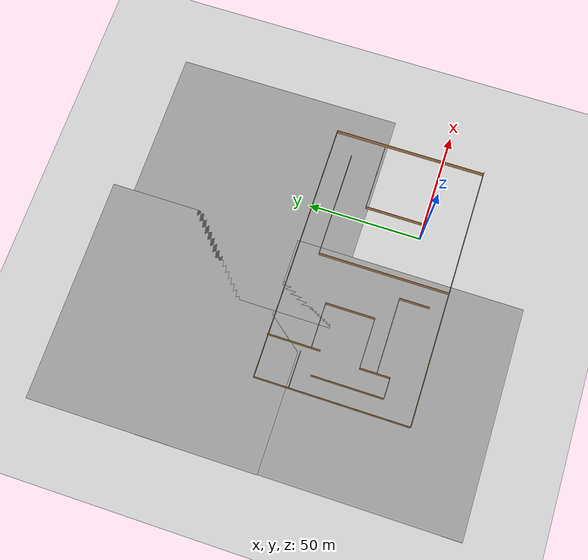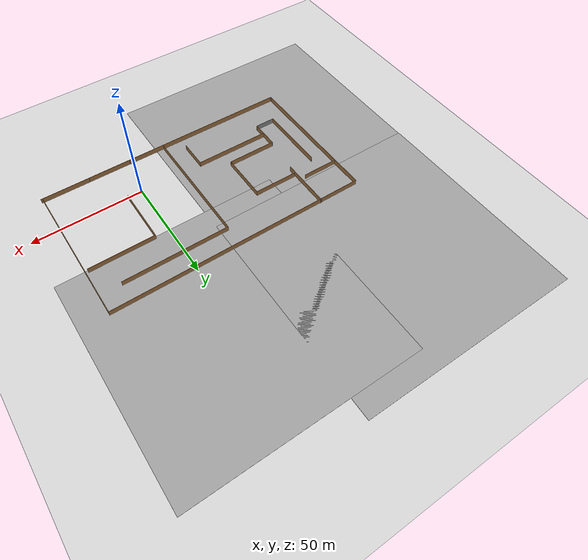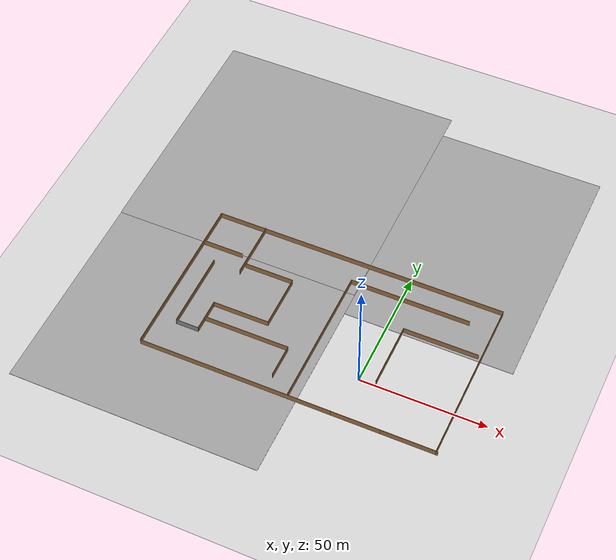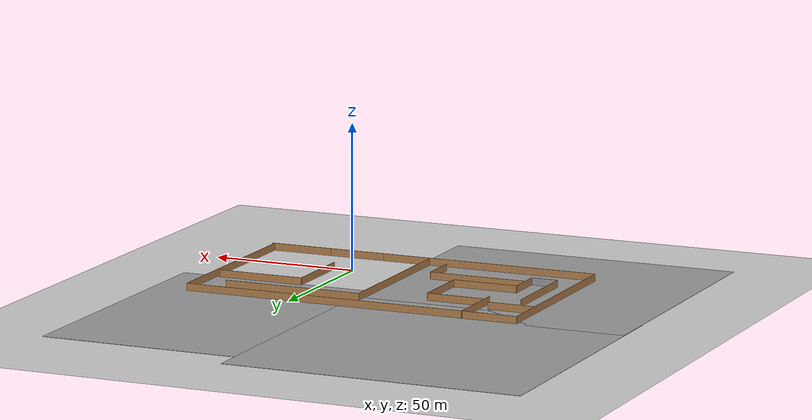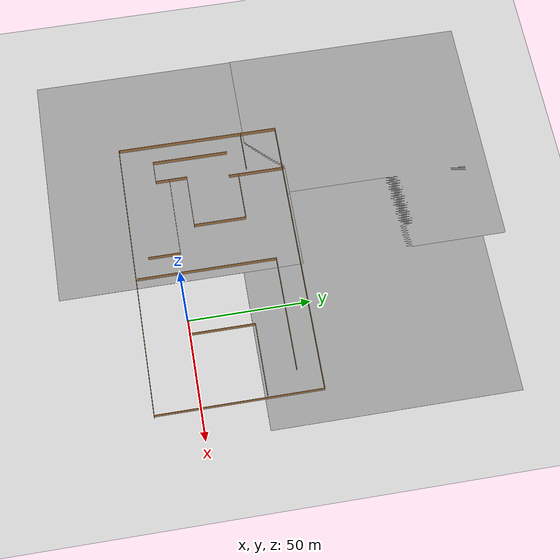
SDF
<sdf version="1.7">
 <world name="default">
  <light name="sun" type="directional">
   <pose>0 0 10 0 -0 0</pose>
   <diffuse>0.8 0.8 0.8 1</diffuse>
   <specular>0.2 0.2 0.2 1</specular>
   <attenuation>
    <range>1000</range>
    <constant>0.9</constant>
    <linear>0.01</linear>
    <quadratic>0.001</quadratic>
   </attenuation>
   <direction>-0.5 0.1 -0.9</direction>
   <spot><inner_angle>0</inner_angle><outer_angle>0</outer_angle><falloff>0</falloff></spot>
  </light>
  <model name="ground_plane">
   <static>1</static>
   <link name="link">
    <collision name="collision">
     <geometry><plane><normal>0 0 1</normal><size>100 100</size></plane></geometry>
     <surface>
      <contact><collide_bitmask>65535</collide_bitmask></contact>
      <friction><ode><mu>100</mu><mu2>50</mu2></ode></friction>
     </surface>
    </collision>
    <visual name="visual">
     <cast_shadows>0</cast_shadows>
     <geometry><plane><normal>0 0 1</normal><size>100 100</size></plane></geometry>
     <material>
      <script><uri>file://media/materials/scripts/gazebo.material</uri><name>Gazebo/Grey</name></script>
     </material>
    </visual>
   </link>
  </model>
  <gravity>0 0 -9.8</gravity>
  <magnetic_field>6e-06 2.3e-05 -4.2e-05</magnetic_field>
  <atmosphere type="adiabatic"/>
  <physics type="ode">
   <max_step_size>0.001</max_step_size>
   <real_time_factor>1</real_time_factor>
   <real_time_update_rate>1000</real_time_update_rate>
  </physics>
  <scene><ambient>0.4 0.4 0.4 1</ambient><background>0.7 0.7 0.7 1</background><shadows>1</shadows></scene>
  <spherical_coordinates>
   <surface_model>EARTH_WGS84</surface_model>
   <latitude_deg>0</latitude_deg>
   <longitude_deg>0</longitude_deg>
   <elevation>0</elevation>
   <heading_deg>0</heading_deg>
  </spherical_coordinates>
  <model name="testword">
   <pose>-20.9243 15.4808 0 0 -0 0</pose>
   <link name="Wall_0">
    <collision name="Wall_0_Collision">
     <geometry><box><size>19.5 0.15 2.5</size></box></geometry>
     <pose>0 0 1.25 0 -0 0</pose>
    </collision>
    <visual name="Wall_0_Visual">
     <pose>0 0 1.25 0 -0 0</pose>
     <geometry><box><size>19.5 0.15 2.5</size></box></geometry>
     <material>
      <script><uri>file://media/materials/scripts/gazebo.material</uri><name>Gazebo/Wood</name></script>
      <ambient>1 1 1 1</ambient>
     </material>
     <meta><layer>0</layer></meta>
    </visual>
    <pose>27.3893 -33.7108 0 0 -0 0</pose>
   </link>
   <link name="Wall_1">
    <collision name="Wall_1_Collision">
     <geometry><box><size>0.15 0.15 2.5</size></box></geometry>
     <pose>0 0 1.25 0 -0 0</pose>
    </collision>
    <visual name="Wall_1_Visual">
     <pose>0 0 1.25 0 -0 0</pose>
     <geometry><box><size>0.15 0.15 2.5</size></box></geometry>
     <material>
      <script><uri>file://media/materials/scripts/gazebo.material</uri><name>Gazebo/Grey</name></script>
      <ambient>1 1 1 1</ambient>
     </material>
     <meta><layer>0</layer></meta>
    </visual>
    <pose>37.0643 -33.7108 0 0 -0 0</pose>
   </link>
   <link name="Wall_10">
    <collision name="Wall_10_Collision">
     <geometry><box><size>0.16 0.15 2.5</size></box></geometry>
     <pose>0 0 1.25 0 -0 0</pose>
    </collision>
    <visual name="Wall_10_Visual">
     <pose>0 0 1.25 0 -0 0</pose>
     <geometry><box><size>0.16 0.15 2.5</size></box></geometry>
     <material>
      <script><uri>file://media/materials/scripts/gazebo.material</uri><name>Gazebo/Grey</name></script>
      <ambient>1 1 1 1</ambient>
     </material>
     <meta><layer>0</layer></meta>
    </visual>
    <pose>-58.8782 33.3867 0 0 -0 0</pose>
   </link>
   <link name="Wall_11">
    <collision name="Wall_11_Collision">
     <geometry><box><size>117.25 0.15 2.5</size></box></geometry>
     <pose>0 0 1.25 0 -0 0</pose>
    </collision>
    <visual name="Wall_11_Visual">
     <pose>0 0 1.25 0 -0 0</pose>
     <geometry><box><size>117.25 0.15 2.5</size></box></geometry>
     <material>
      <script><uri>file://media/materials/scripts/gazebo.material</uri><name>Gazebo/Wood</name></script>
      <ambient>1 1 1 1</ambient>
     </material>
     <meta><layer>0</layer></meta>
    </visual>
    <pose>-0.32321 33.3867 0 0 -0 0</pose>
   </link>
   <link name="Wall_12">
    <collision name="Wall_12_Collision">
     <geometry><box><size>67.25 0.15 2.5</size></box></geometry>
     <pose>0 0 1.25 0 -0 0</pose>
    </collision>
    <visual name="Wall_12_Visual">
     <pose>0 0 1.25 0 -0 0</pose>
     <geometry><box><size>67.25 0.15 2.5</size></box></geometry>
     <material>
      <script><uri>file://media/materials/scripts/gazebo.material</uri><name>Gazebo/Wood</name></script>
      <ambient>1 1 1 1</ambient>
     </material>
     <meta><layer>0</layer></meta>
    </visual>
    <pose>58.2268 -0.163329 0 0 -0 -1.5708</pose>
   </link>
   <link name="Wall_14">
    <collision name="Wall_14_Collision">
     <geometry><box><size>16.25 0.15 2.5</size></box></geometry>
     <pose>0 0 1.25 0 -0 0</pose>
    </collision>
    <visual name="Wall_14_Visual">
     <pose>0 0 1.25 0 -0 0</pose>
     <geometry><box><size>16.25 0.15 2.5</size></box></geometry>
     <material>
      <script><uri>file://media/materials/scripts/gazebo.material</uri><name>Gazebo/Wood</name></script>
      <ambient>1 1 1 1</ambient>
     </material>
     <meta><layer>0</layer></meta>
    </visual>
    <pose>-50.5454 18.3513 0 0 -0 0</pose>
   </link>
   <link name="Wall_17">
    <collision name="Wall_17_Collision">
     <geometry><box><size>23.25 0.15 2.5</size></box></geometry>
     <pose>0 0 1.25 0 -0 0</pose>
    </collision>
    <visual name="Wall_17_Visual">
     <pose>0 0 1.25 0 -0 0</pose>
     <geometry><box><size>23.25 0.15 2.5</size></box></geometry>
     <material>
      <script><uri>file://media/materials/scripts/gazebo.material</uri><name>Gazebo/Wood</name></script>
      <ambient>1 1 1 1</ambient>
     </material>
     <meta><layer>0</layer></meta>
    </visual>
    <pose>-39.8315 22.1919 0 0 -0 1.5708</pose>
   </link>
   <link name="Wall_19">
    <collision name="Wall_19_Collision">
     <geometry><box><size>19.75 0.15 2.5</size></box></geometry>
     <pose>0 0 1.25 0 -0 0</pose>
    </collision>
    <visual name="Wall_19_Visual">
     <pose>0 0 1.25 0 -0 0</pose>
     <geometry><box><size>19.75 0.15 2.5</size></box></geometry>
     <material>
      <script><uri>file://media/materials/scripts/gazebo.material</uri><name>Gazebo/Wood</name></script>
      <ambient>1 1 1 1</ambient>
     </material>
     <meta><layer>0</layer></meta>
    </visual>
    <pose>-29.3732 14.5922 0 0 -0 0</pose>
   </link>
   <link name="Wall_20">
    <collision name="Wall_20_Collision">
     <geometry><box><size>21.75 0.15 2.5</size></box></geometry>
     <pose>0 0 1.25 0 -0 0</pose>
    </collision>
    <visual name="Wall_20_Visual">
     <pose>0 0 1.25 0 -0 0</pose>
     <geometry><box><size>21.75 0.15 2.5</size></box></geometry>
     <material>
      <script><uri>file://media/materials/scripts/gazebo.material</uri><name>Gazebo/Wood</name></script>
      <ambient>1 1 1 1</ambient>
     </material>
     <meta><layer>0</layer></meta>
    </visual>
    <pose>-19.5732 3.79216 0 0 -0 -1.5708</pose>
   </link>
   <link name="Wall_21">
    <collision name="Wall_21_Collision">
     <geometry><box><size>22.5 0.15 2.5</size></box></geometry>
     <pose>0 0 1.25 0 -0 0</pose>
    </collision>
    <visual name="Wall_21_Visual">
     <pose>0 0 1.25 0 -0 0</pose>
     <geometry><box><size>22.5 0.15 2.5</size></box></geometry>
     <material>
      <script><uri>file://media/materials/scripts/gazebo.material</uri><name>Gazebo/Wood</name></script>
      <ambient>1 1 1 1</ambient>
     </material>
     <meta><layer>0</layer></meta>
    </visual>
    <pose>-30.7482 -7.00785 0 0 -0 3.14159</pose>
   </link>
   <link name="Wall_22">
    <collision name="Wall_22_Collision">
     <geometry><box><size>13.25 0.15 2.5</size></box></geometry>
     <pose>0 0 1.25 0 -0 0</pose>
    </collision>
    <visual name="Wall_22_Visual">
     <pose>0 0 1.25 0 -0 0</pose>
     <geometry><box><size>13.25 0.15 2.5</size></box></geometry>
     <material>
      <script><uri>file://media/materials/scripts/gazebo.material</uri><name>Gazebo/Wood</name></script>
      <ambient>1 1 1 1</ambient>
     </material>
     <meta><layer>0</layer></meta>
    </visual>
    <pose>-41.9232 -13.5578 0 0 -0 -1.5708</pose>
   </link>
   <link name="Wall_23">
    <collision name="Wall_23_Collision">
     <geometry><box><size>9.25 0.15 2.5</size></box></geometry>
     <pose>0 0 1.25 0 -0 0</pose>
    </collision>
    <visual name="Wall_23_Visual">
     <pose>0 0 1.25 0 -0 0</pose>
     <geometry><box><size>9.25 0.15 2.5</size></box></geometry>
     <material>
      <script><uri>file://media/materials/scripts/gazebo.material</uri><name>Gazebo/Grey</name></script>
      <ambient>1 1 1 1</ambient>
     </material>
     <meta><layer>0</layer></meta>
    </visual>
    <pose>-46.4732 -20.1078 0 0 -0 3.14159</pose>
   </link>
   <link name="Wall_24">
    <collision name="Wall_24_Collision">
     <geometry><box><size>31.5 0.15 2.5</size></box></geometry>
     <pose>0 0 1.25 0 -0 0</pose>
    </collision>
    <visual name="Wall_24_Visual">
     <pose>0 0 1.25 0 -0 0</pose>
     <geometry><box><size>31.5 0.15 2.5</size></box></geometry>
     <material>
      <script><uri>file://media/materials/scripts/gazebo.material</uri><name>Gazebo/Wood</name></script>
      <ambient>1 1 1 1</ambient>
     </material>
     <meta><layer>0</layer></meta>
    </visual>
    <pose>-51.0232 -4.43285 0 0 -0 1.5708</pose>
   </link>
   <link name="Wall_26">
    <collision name="Wall_26_Collision">
     <geometry><box><size>34 0.15 2.5</size></box></geometry>
     <pose>0 0 1.25 0 -0 0</pose>
    </collision>
    <visual name="Wall_26_Visual">
     <pose>0 0 1.25 0 -0 0</pose>
     <geometry><box><size>34 0.15 2.5</size></box></geometry>
     <material>
      <script><uri>file://media/materials/scripts/gazebo.material</uri><name>Gazebo/Wood</name></script>
      <ambient>1 1 1 1</ambient>
     </material>
     <meta><layer>0</layer></meta>
    </visual>
    <pose>-24.8817 -14.3765 0 0 -0 0</pose>
   </link>
   <link name="Wall_27">
    <collision name="Wall_27_Collision">
     <geometry><box><size>13.25 0.15 2.5</size></box></geometry>
     <pose>0 0 1.25 0 -0 0</pose>
    </collision>
    <visual name="Wall_27_Visual">
     <pose>0 0 1.25 0 -0 0</pose>
     <geometry><box><size>13.25 0.15 2.5</size></box></geometry>
     <material>
      <script><uri>file://media/materials/scripts/gazebo.material</uri><name>Gazebo/Wood</name></script>
      <ambient>1 1 1 1</ambient>
     </material>
     <meta><layer>0</layer></meta>
    </visual>
    <pose>-7.95667 -20.9265 0 0 -0 -1.5708</pose>
   </link>
   <link name="Wall_29">
    <collision name="Wall_29_Collision">
     <geometry><box><size>57.25 0.15 2.5</size></box></geometry>
     <pose>0 0 1.25 0 -0 0</pose>
    </collision>
    <visual name="Wall_29_Visual">
     <pose>0 0 1.25 0 -0 0</pose>
     <geometry><box><size>57.25 0.15 2.5</size></box></geometry>
     <material>
      <script><uri>file://media/materials/scripts/gazebo.material</uri><name>Gazebo/Wood</name></script>
      <ambient>1 1 1 1</ambient>
     </material>
     <meta><layer>0</layer></meta>
    </visual>
    <pose>0.658779 -4.59033 0 0 -0 1.5708</pose>
   </link>
   <link name="Wall_30">
    <collision name="Wall_30_Collision">
     <geometry><box><size>48 0.15 2.5</size></box></geometry>
     <pose>0 0 1.25 0 -0 0</pose>
    </collision>
    <visual name="Wall_30_Visual">
     <pose>0 0 1.25 0 -0 0</pose>
     <geometry><box><size>48 0.15 2.5</size></box></geometry>
     <material>
      <script><uri>file://media/materials/scripts/gazebo.material</uri><name>Gazebo/Wood</name></script>
      <ambient>1 1 1 1</ambient>
     </material>
     <meta><layer>0</layer></meta>
    </visual>
    <pose>24.5838 23.9597 0 0 -0 0</pose>
   </link>
   <link name="Wall_32">
    <collision name="Wall_32_Collision">
     <geometry><box><size>29.75 0.15 2.5</size></box></geometry>
     <pose>0 0 1.25 0 -0 0</pose>
    </collision>
    <visual name="Wall_32_Visual">
     <pose>0 0 1.25 0 -0 0</pose>
     <geometry><box><size>29.75 0.15 2.5</size></box></geometry>
     <material>
      <script><uri>file://media/materials/scripts/gazebo.material</uri><name>Gazebo/Wood</name></script>
      <ambient>1 1 1 1</ambient>
     </material>
     <meta><layer>0</layer></meta>
    </visual>
    <pose>42.1502 10.9711 0 0 -0 3.14159</pose>
   </link>
   <link name="Wall_33">
    <collision name="Wall_33_Collision">
     <geometry><box><size>26 0.15 2.5</size></box></geometry>
     <pose>0 0 1.25 0 -0 0</pose>
    </collision>
    <visual name="Wall_33_Visual">
     <pose>0 0 1.25 0 -0 0</pose>
     <geometry><box><size>26 0.15 2.5</size></box></geometry>
     <material>
      <script><uri>file://media/materials/scripts/gazebo.material</uri><name>Gazebo/Wood</name></script>
      <ambient>1 1 1 1</ambient>
     </material>
     <meta><layer>0</layer></meta>
    </visual>
    <pose>27.3502 -1.95393 0 0 -0 -1.5708</pose>
   </link>
   <link name="Wall_4">
    <collision name="Wall_4_Collision">
     <geometry><box><size>22 0.15 2.5</size></box></geometry>
     <pose>0 0 1.25 0 -0 0</pose>
    </collision>
    <visual name="Wall_4_Visual">
     <pose>0 0 1.25 0 -0 0</pose>
     <geometry><box><size>22 0.15 2.5</size></box></geometry>
     <material>
      <script><uri>file://media/materials/scripts/gazebo.material</uri><name>Gazebo/Wood</name></script>
      <ambient>1 1 1 1</ambient>
     </material>
     <meta><layer>0</layer></meta>
    </visual>
    <pose>47.9893 -33.7108 0 0 -0 0</pose>
   </link>
   <link name="Wall_7">
    <collision name="Wall_7_Collision">
     <geometry><box><size>76.5 0.15 2.5</size></box></geometry>
     <pose>0 0 1.25 0 -0 0</pose>
    </collision>
    <visual name="Wall_7_Visual">
     <pose>0 0 1.25 0 -0 0</pose>
     <geometry><box><size>76.5 0.15 2.5</size></box></geometry>
     <material>
      <script><uri>file://media/materials/scripts/gazebo.material</uri><name>Gazebo/Wood</name></script>
      <ambient>1 1 1 1</ambient>
     </material>
     <meta><layer>0</layer></meta>
    </visual>
    <pose>-20.4607 -33.7108 0 0 -0 3.14159</pose>
   </link>
   <link name="Wall_8">
    <collision name="Wall_8_Collision">
     <geometry><box><size>0.5 0.15 2.5</size></box></geometry>
     <pose>0 0 1.25 0 -0 0</pose>
    </collision>
    <visual name="Wall_8_Visual">
     <pose>0 0 1.25 0 -0 0</pose>
     <geometry><box><size>0.5 0.15 2.5</size></box></geometry>
     <material>
      <script><uri>file://media/materials/scripts/gazebo.material</uri><name>Gazebo/Grey</name></script>
      <ambient>1 1 1 1</ambient>
     </material>
     <meta><layer>0</layer></meta>
    </visual>
    <pose>-58.7595 -33.5871 0 0 -0 2.35619</pose>
   </link>
   <link name="Wall_9">
    <collision name="Wall_9_Collision">
     <geometry><box><size>67 0.15 2.5</size></box></geometry>
     <pose>0 0 1.25 0 -0 0</pose>
    </collision>
    <visual name="Wall_9_Visual">
     <pose>0 0 1.25 0 -0 0</pose>
     <geometry><box><size>67 0.15 2.5</size></box></geometry>
     <material>
      <script><uri>file://media/materials/scripts/gazebo.material</uri><name>Gazebo/Wood</name></script>
      <ambient>1 1 1 1</ambient>
     </material>
     <meta><layer>0</layer></meta>
    </visual>
    <pose>-58.8832 -0.038329 0 0 -0 1.5708</pose>
   </link>
   <static>1</static>
  </model>
  <model name="ground_plane_0">
   <static>1</static>
   <link name="link">
    <collision name="collision">
     <geometry><plane><normal>0 0 1</normal><size>100 100</size></plane></geometry>
     <surface>
      <contact><collide_bitmask>65535</collide_bitmask></contact>
      <friction><ode><mu>100</mu><mu2>50</mu2></ode></friction>
     </surface>
    </collision>
    <visual name="visual">
     <cast_shadows>0</cast_shadows>
     <geometry><plane><normal>0 0 1</normal><size>100 100</size></plane></geometry>
     <material>
      <script><uri>file://media/materials/scripts/gazebo.material</uri><name>Gazebo/Grey</name></script>
     </material>
    </visual>
   </link>
   <pose>-66.8586 0.003654 0 0 -0 0</pose>
  </model>
  <model name="ground_plane_1">
   <static>1</static>
   <link name="link">
    <collision name="collision">
     <geometry><plane><normal>0 0 1</normal><size>100 100</size></plane></geometry>
     <surface>
      <contact><collide_bitmask>65535</collide_bitmask></contact>
      <friction><ode><mu>100</mu><mu2>50</mu2></ode></friction>
     </surface>
    </collision>
    <visual name="visual">
     <cast_shadows>0</cast_shadows>
     <geometry><plane><normal>0 0 1</normal><size>100 100</size></plane></geometry>
     <material>
      <script><uri>file://media/materials/scripts/gazebo.material</uri><name>Gazebo/Grey</name></script>
     </material>
    </visual>
   </link>
   <pose>0.034428 75.3583 0 0 -0 0</pose>
  </model>
  <model name="ground_plane_2">
   <static>1</static>
   <link name="link">
    <collision name="collision">
     <geometry><plane><normal>0 0 1</normal><size>100 100</size></plane></geometry>
     <surface>
      <contact><collide_bitmask>65535</collide_bitmask></contact>
      <friction><ode><mu>100</mu><mu2>50</mu2></ode></friction>
     </surface>
    </collision>
    <visual name="visual">
     <cast_shadows>0</cast_shadows>
     <geometry><plane><normal>0 0 1</normal><size>100 100</size></plane></geometry>
     <material>
      <script><uri>file://media/materials/scripts/gazebo.material</uri><name>Gazebo/Grey</name></script>
     </material>
    </visual>
   </link>
   <pose>-67.0619 84.9 0 0 -0 0</pose>
  </model>
  <light name="user_directional_light_0" type="directional">
   <pose>11.7006 36.7179 1 0 -0 0</pose>
   <diffuse>0.5 0.5 0.5 1</diffuse>
   <specular>0.1 0.1 0.1 1</specular>
   <direction>0.1 0.1 -0.9</direction>
   <attenuation>
    <range>20</range>
    <constant>0.5</constant>
    <linear>0.01</linear>
    <quadratic>0.001</quadratic>
   </attenuation>
  </light>
  <light name="user_directional_light_1" type="directional">
   <pose>-55.6205 16.9642 1 0 -0 0</pose>
   <diffuse>0.5 0.5 0.5 1</diffuse>
   <specular>0.1 0.1 0.1 1</specular>
   <direction>0.1 0.1 -0.9</direction>
   <attenuation>
    <range>20</range>
    <constant>0.5</constant>
    <linear>0.01</linear>
    <quadratic>0.001</quadratic>
   </attenuation>
  </light>
  <light name="user_directional_light_2" type="directional">
   <pose>-28.0875 29.8914 1 0 -0 0</pose>
   <diffuse>0.5 0.5 0.5 1</diffuse>
   <specular>0.1 0.1 0.1 1</specular>
   <direction>0.1 0.1 -0.9</direction>
   <attenuation>
    <range>20</range>
    <constant>0.5</constant>
    <linear>0.01</linear>
    <quadratic>0.001</quadratic>
   </attenuation>
  </light>
 </world>
</sdf>
